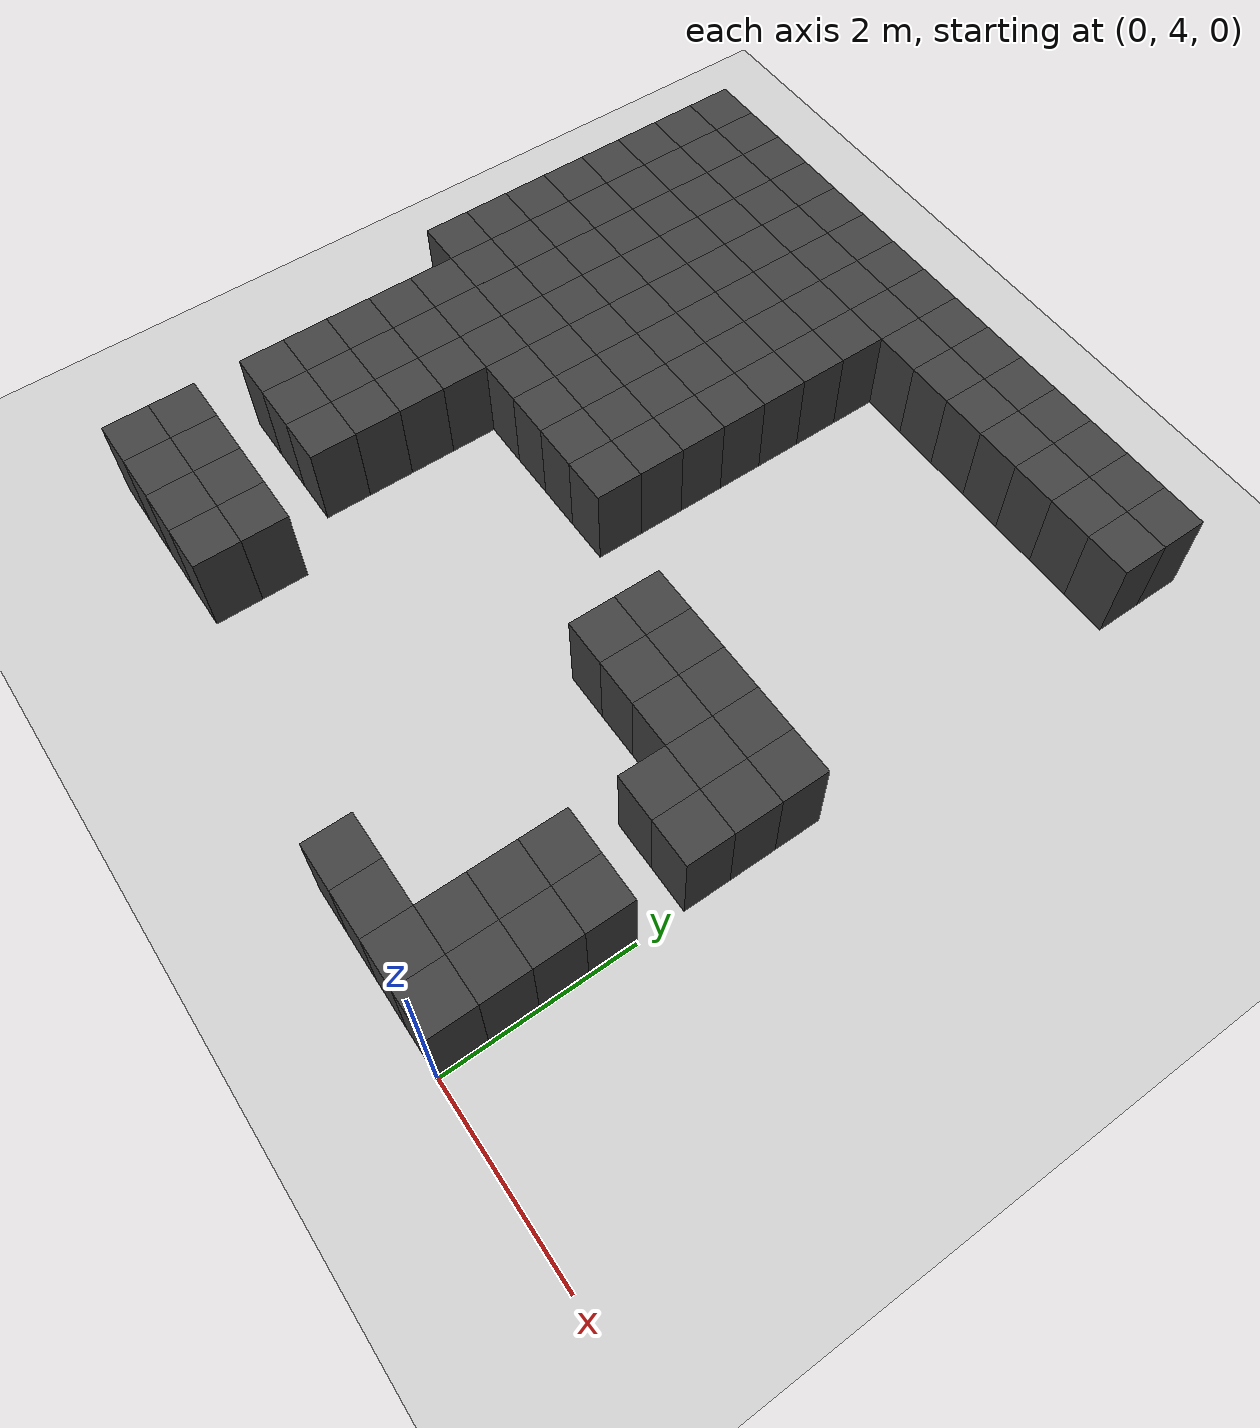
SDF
<sdf version="1.7">
 <world name="map_14056">
  <model name="ground_plane">
   <static>true</static>
   <link name="link">
    <collision name="collision">
     <geometry><plane><normal>0 0 1</normal><size>200 200</size></plane></geometry>
    </collision>
    <visual name="visual">
     <geometry><plane><normal>0 0 1</normal><size>200 200</size></plane></geometry>
     <material><ambient>0.8 0.8 0.8 1</ambient><diffuse>0.8 0.8 0.8 1</diffuse></material>
    </visual>
   </link>
  </model>
  <model name="maze_environment">
   <static>true</static>
   <link name="wall_10">
    <pose>-7.250 12.250 0.500 0 0 0</pose>
    <collision name="col"><geometry><box><size>0.5 0.5 1.0</size></box></geometry></collision>
    <visual name="vis">
     <geometry><box><size>0.5 0.5 1.0</size></box></geometry>
     <material><ambient>0.15 0.15 0.15 1</ambient><diffuse>0.25 0.25 0.25 1</diffuse></material>
    </visual>
   </link>
   <link name="wall_11">
    <pose>-6.750 12.250 0.500 0 0 0</pose>
    <collision name="col"><geometry><box><size>0.5 0.5 1.0</size></box></geometry></collision>
    <visual name="vis">
     <geometry><box><size>0.5 0.5 1.0</size></box></geometry>
     <material><ambient>0.15 0.15 0.15 1</ambient><diffuse>0.25 0.25 0.25 1</diffuse></material>
    </visual>
   </link>
   <link name="wall_12">
    <pose>-6.250 12.250 0.500 0 0 0</pose>
    <collision name="col"><geometry><box><size>0.5 0.5 1.0</size></box></geometry></collision>
    <visual name="vis">
     <geometry><box><size>0.5 0.5 1.0</size></box></geometry>
     <material><ambient>0.15 0.15 0.15 1</ambient><diffuse>0.25 0.25 0.25 1</diffuse></material>
    </visual>
   </link>
   <link name="wall_13">
    <pose>-5.750 12.250 0.500 0 0 0</pose>
    <collision name="col"><geometry><box><size>0.5 0.5 1.0</size></box></geometry></collision>
    <visual name="vis">
     <geometry><box><size>0.5 0.5 1.0</size></box></geometry>
     <material><ambient>0.15 0.15 0.15 1</ambient><diffuse>0.25 0.25 0.25 1</diffuse></material>
    </visual>
   </link>
   <link name="wall_14">
    <pose>-5.250 12.250 0.500 0 0 0</pose>
    <collision name="col"><geometry><box><size>0.5 0.5 1.0</size></box></geometry></collision>
    <visual name="vis">
     <geometry><box><size>0.5 0.5 1.0</size></box></geometry>
     <material><ambient>0.15 0.15 0.15 1</ambient><diffuse>0.25 0.25 0.25 1</diffuse></material>
    </visual>
   </link>
   <link name="wall_15">
    <pose>-4.750 12.250 0.500 0 0 0</pose>
    <collision name="col"><geometry><box><size>0.5 0.5 1.0</size></box></geometry></collision>
    <visual name="vis">
     <geometry><box><size>0.5 0.5 1.0</size></box></geometry>
     <material><ambient>0.15 0.15 0.15 1</ambient><diffuse>0.25 0.25 0.25 1</diffuse></material>
    </visual>
   </link>
   <link name="wall_16">
    <pose>-4.250 12.250 0.500 0 0 0</pose>
    <collision name="col"><geometry><box><size>0.5 0.5 1.0</size></box></geometry></collision>
    <visual name="vis">
     <geometry><box><size>0.5 0.5 1.0</size></box></geometry>
     <material><ambient>0.15 0.15 0.15 1</ambient><diffuse>0.25 0.25 0.25 1</diffuse></material>
    </visual>
   </link>
   <link name="wall_17">
    <pose>-3.750 12.250 0.500 0 0 0</pose>
    <collision name="col"><geometry><box><size>0.5 0.5 1.0</size></box></geometry></collision>
    <visual name="vis">
     <geometry><box><size>0.5 0.5 1.0</size></box></geometry>
     <material><ambient>0.15 0.15 0.15 1</ambient><diffuse>0.25 0.25 0.25 1</diffuse></material>
    </visual>
   </link>
   <link name="wall_18">
    <pose>-3.250 12.250 0.500 0 0 0</pose>
    <collision name="col"><geometry><box><size>0.5 0.5 1.0</size></box></geometry></collision>
    <visual name="vis">
     <geometry><box><size>0.5 0.5 1.0</size></box></geometry>
     <material><ambient>0.15 0.15 0.15 1</ambient><diffuse>0.25 0.25 0.25 1</diffuse></material>
    </visual>
   </link>
   <link name="wall_19">
    <pose>-2.750 12.250 0.500 0 0 0</pose>
    <collision name="col"><geometry><box><size>0.5 0.5 1.0</size></box></geometry></collision>
    <visual name="vis">
     <geometry><box><size>0.5 0.5 1.0</size></box></geometry>
     <material><ambient>0.15 0.15 0.15 1</ambient><diffuse>0.25 0.25 0.25 1</diffuse></material>
    </visual>
   </link>
   <link name="wall_20">
    <pose>-2.250 12.250 0.500 0 0 0</pose>
    <collision name="col"><geometry><box><size>0.5 0.5 1.0</size></box></geometry></collision>
    <visual name="vis">
     <geometry><box><size>0.5 0.5 1.0</size></box></geometry>
     <material><ambient>0.15 0.15 0.15 1</ambient><diffuse>0.25 0.25 0.25 1</diffuse></material>
    </visual>
   </link>
   <link name="wall_21">
    <pose>-1.750 12.250 0.500 0 0 0</pose>
    <collision name="col"><geometry><box><size>0.5 0.5 1.0</size></box></geometry></collision>
    <visual name="vis">
     <geometry><box><size>0.5 0.5 1.0</size></box></geometry>
     <material><ambient>0.15 0.15 0.15 1</ambient><diffuse>0.25 0.25 0.25 1</diffuse></material>
    </visual>
   </link>
   <link name="wall_22">
    <pose>-1.250 12.250 0.500 0 0 0</pose>
    <collision name="col"><geometry><box><size>0.5 0.5 1.0</size></box></geometry></collision>
    <visual name="vis">
     <geometry><box><size>0.5 0.5 1.0</size></box></geometry>
     <material><ambient>0.15 0.15 0.15 1</ambient><diffuse>0.25 0.25 0.25 1</diffuse></material>
    </visual>
   </link>
   <link name="wall_23">
    <pose>-0.750 12.250 0.500 0 0 0</pose>
    <collision name="col"><geometry><box><size>0.5 0.5 1.0</size></box></geometry></collision>
    <visual name="vis">
     <geometry><box><size>0.5 0.5 1.0</size></box></geometry>
     <material><ambient>0.15 0.15 0.15 1</ambient><diffuse>0.25 0.25 0.25 1</diffuse></material>
    </visual>
   </link>
   <link name="wall_24">
    <pose>-0.250 12.250 0.500 0 0 0</pose>
    <collision name="col"><geometry><box><size>0.5 0.5 1.0</size></box></geometry></collision>
    <visual name="vis">
     <geometry><box><size>0.5 0.5 1.0</size></box></geometry>
     <material><ambient>0.15 0.15 0.15 1</ambient><diffuse>0.25 0.25 0.25 1</diffuse></material>
    </visual>
   </link>
   <link name="wall_57">
    <pose>-7.250 11.750 0.500 0 0 0</pose>
    <collision name="col"><geometry><box><size>0.5 0.5 1.0</size></box></geometry></collision>
    <visual name="vis">
     <geometry><box><size>0.5 0.5 1.0</size></box></geometry>
     <material><ambient>0.15 0.15 0.15 1</ambient><diffuse>0.25 0.25 0.25 1</diffuse></material>
    </visual>
   </link>
   <link name="wall_58">
    <pose>-6.750 11.750 0.500 0 0 0</pose>
    <collision name="col"><geometry><box><size>0.5 0.5 1.0</size></box></geometry></collision>
    <visual name="vis">
     <geometry><box><size>0.5 0.5 1.0</size></box></geometry>
     <material><ambient>0.15 0.15 0.15 1</ambient><diffuse>0.25 0.25 0.25 1</diffuse></material>
    </visual>
   </link>
   <link name="wall_59">
    <pose>-6.250 11.750 0.500 0 0 0</pose>
    <collision name="col"><geometry><box><size>0.5 0.5 1.0</size></box></geometry></collision>
    <visual name="vis">
     <geometry><box><size>0.5 0.5 1.0</size></box></geometry>
     <material><ambient>0.15 0.15 0.15 1</ambient><diffuse>0.25 0.25 0.25 1</diffuse></material>
    </visual>
   </link>
   <link name="wall_60">
    <pose>-5.750 11.750 0.500 0 0 0</pose>
    <collision name="col"><geometry><box><size>0.5 0.5 1.0</size></box></geometry></collision>
    <visual name="vis">
     <geometry><box><size>0.5 0.5 1.0</size></box></geometry>
     <material><ambient>0.15 0.15 0.15 1</ambient><diffuse>0.25 0.25 0.25 1</diffuse></material>
    </visual>
   </link>
   <link name="wall_61">
    <pose>-5.250 11.750 0.500 0 0 0</pose>
    <collision name="col"><geometry><box><size>0.5 0.5 1.0</size></box></geometry></collision>
    <visual name="vis">
     <geometry><box><size>0.5 0.5 1.0</size></box></geometry>
     <material><ambient>0.15 0.15 0.15 1</ambient><diffuse>0.25 0.25 0.25 1</diffuse></material>
    </visual>
   </link>
   <link name="wall_62">
    <pose>-4.750 11.750 0.500 0 0 0</pose>
    <collision name="col"><geometry><box><size>0.5 0.5 1.0</size></box></geometry></collision>
    <visual name="vis">
     <geometry><box><size>0.5 0.5 1.0</size></box></geometry>
     <material><ambient>0.15 0.15 0.15 1</ambient><diffuse>0.25 0.25 0.25 1</diffuse></material>
    </visual>
   </link>
   <link name="wall_63">
    <pose>-4.250 11.750 0.500 0 0 0</pose>
    <collision name="col"><geometry><box><size>0.5 0.5 1.0</size></box></geometry></collision>
    <visual name="vis">
     <geometry><box><size>0.5 0.5 1.0</size></box></geometry>
     <material><ambient>0.15 0.15 0.15 1</ambient><diffuse>0.25 0.25 0.25 1</diffuse></material>
    </visual>
   </link>
   <link name="wall_64">
    <pose>-3.750 11.750 0.500 0 0 0</pose>
    <collision name="col"><geometry><box><size>0.5 0.5 1.0</size></box></geometry></collision>
    <visual name="vis">
     <geometry><box><size>0.5 0.5 1.0</size></box></geometry>
     <material><ambient>0.15 0.15 0.15 1</ambient><diffuse>0.25 0.25 0.25 1</diffuse></material>
    </visual>
   </link>
   <link name="wall_65">
    <pose>-3.250 11.750 0.500 0 0 0</pose>
    <collision name="col"><geometry><box><size>0.5 0.5 1.0</size></box></geometry></collision>
    <visual name="vis">
     <geometry><box><size>0.5 0.5 1.0</size></box></geometry>
     <material><ambient>0.15 0.15 0.15 1</ambient><diffuse>0.25 0.25 0.25 1</diffuse></material>
    </visual>
   </link>
   <link name="wall_66">
    <pose>-2.750 11.750 0.500 0 0 0</pose>
    <collision name="col"><geometry><box><size>0.5 0.5 1.0</size></box></geometry></collision>
    <visual name="vis">
     <geometry><box><size>0.5 0.5 1.0</size></box></geometry>
     <material><ambient>0.15 0.15 0.15 1</ambient><diffuse>0.25 0.25 0.25 1</diffuse></material>
    </visual>
   </link>
   <link name="wall_67">
    <pose>-2.250 11.750 0.500 0 0 0</pose>
    <collision name="col"><geometry><box><size>0.5 0.5 1.0</size></box></geometry></collision>
    <visual name="vis">
     <geometry><box><size>0.5 0.5 1.0</size></box></geometry>
     <material><ambient>0.15 0.15 0.15 1</ambient><diffuse>0.25 0.25 0.25 1</diffuse></material>
    </visual>
   </link>
   <link name="wall_68">
    <pose>-1.750 11.750 0.500 0 0 0</pose>
    <collision name="col"><geometry><box><size>0.5 0.5 1.0</size></box></geometry></collision>
    <visual name="vis">
     <geometry><box><size>0.5 0.5 1.0</size></box></geometry>
     <material><ambient>0.15 0.15 0.15 1</ambient><diffuse>0.25 0.25 0.25 1</diffuse></material>
    </visual>
   </link>
   <link name="wall_69">
    <pose>-1.250 11.750 0.500 0 0 0</pose>
    <collision name="col"><geometry><box><size>0.5 0.5 1.0</size></box></geometry></collision>
    <visual name="vis">
     <geometry><box><size>0.5 0.5 1.0</size></box></geometry>
     <material><ambient>0.15 0.15 0.15 1</ambient><diffuse>0.25 0.25 0.25 1</diffuse></material>
    </visual>
   </link>
   <link name="wall_70">
    <pose>-0.750 11.750 0.500 0 0 0</pose>
    <collision name="col"><geometry><box><size>0.5 0.5 1.0</size></box></geometry></collision>
    <visual name="vis">
     <geometry><box><size>0.5 0.5 1.0</size></box></geometry>
     <material><ambient>0.15 0.15 0.15 1</ambient><diffuse>0.25 0.25 0.25 1</diffuse></material>
    </visual>
   </link>
   <link name="wall_71">
    <pose>-0.250 11.750 0.500 0 0 0</pose>
    <collision name="col"><geometry><box><size>0.5 0.5 1.0</size></box></geometry></collision>
    <visual name="vis">
     <geometry><box><size>0.5 0.5 1.0</size></box></geometry>
     <material><ambient>0.15 0.15 0.15 1</ambient><diffuse>0.25 0.25 0.25 1</diffuse></material>
    </visual>
   </link>
   <link name="wall_104">
    <pose>-7.250 11.250 0.500 0 0 0</pose>
    <collision name="col"><geometry><box><size>0.5 0.5 1.0</size></box></geometry></collision>
    <visual name="vis">
     <geometry><box><size>0.5 0.5 1.0</size></box></geometry>
     <material><ambient>0.15 0.15 0.15 1</ambient><diffuse>0.25 0.25 0.25 1</diffuse></material>
    </visual>
   </link>
   <link name="wall_105">
    <pose>-6.750 11.250 0.500 0 0 0</pose>
    <collision name="col"><geometry><box><size>0.5 0.5 1.0</size></box></geometry></collision>
    <visual name="vis">
     <geometry><box><size>0.5 0.5 1.0</size></box></geometry>
     <material><ambient>0.15 0.15 0.15 1</ambient><diffuse>0.25 0.25 0.25 1</diffuse></material>
    </visual>
   </link>
   <link name="wall_106">
    <pose>-6.250 11.250 0.500 0 0 0</pose>
    <collision name="col"><geometry><box><size>0.5 0.5 1.0</size></box></geometry></collision>
    <visual name="vis">
     <geometry><box><size>0.5 0.5 1.0</size></box></geometry>
     <material><ambient>0.15 0.15 0.15 1</ambient><diffuse>0.25 0.25 0.25 1</diffuse></material>
    </visual>
   </link>
   <link name="wall_107">
    <pose>-5.750 11.250 0.500 0 0 0</pose>
    <collision name="col"><geometry><box><size>0.5 0.5 1.0</size></box></geometry></collision>
    <visual name="vis">
     <geometry><box><size>0.5 0.5 1.0</size></box></geometry>
     <material><ambient>0.15 0.15 0.15 1</ambient><diffuse>0.25 0.25 0.25 1</diffuse></material>
    </visual>
   </link>
   <link name="wall_108">
    <pose>-5.250 11.250 0.500 0 0 0</pose>
    <collision name="col"><geometry><box><size>0.5 0.5 1.0</size></box></geometry></collision>
    <visual name="vis">
     <geometry><box><size>0.5 0.5 1.0</size></box></geometry>
     <material><ambient>0.15 0.15 0.15 1</ambient><diffuse>0.25 0.25 0.25 1</diffuse></material>
    </visual>
   </link>
   <link name="wall_109">
    <pose>-4.750 11.250 0.500 0 0 0</pose>
    <collision name="col"><geometry><box><size>0.5 0.5 1.0</size></box></geometry></collision>
    <visual name="vis">
     <geometry><box><size>0.5 0.5 1.0</size></box></geometry>
     <material><ambient>0.15 0.15 0.15 1</ambient><diffuse>0.25 0.25 0.25 1</diffuse></material>
    </visual>
   </link>
   <link name="wall_110">
    <pose>-4.250 11.250 0.500 0 0 0</pose>
    <collision name="col"><geometry><box><size>0.5 0.5 1.0</size></box></geometry></collision>
    <visual name="vis">
     <geometry><box><size>0.5 0.5 1.0</size></box></geometry>
     <material><ambient>0.15 0.15 0.15 1</ambient><diffuse>0.25 0.25 0.25 1</diffuse></material>
    </visual>
   </link>
   <link name="wall_111">
    <pose>-3.750 11.250 0.500 0 0 0</pose>
    <collision name="col"><geometry><box><size>0.5 0.5 1.0</size></box></geometry></collision>
    <visual name="vis">
     <geometry><box><size>0.5 0.5 1.0</size></box></geometry>
     <material><ambient>0.15 0.15 0.15 1</ambient><diffuse>0.25 0.25 0.25 1</diffuse></material>
    </visual>
   </link>
   <link name="wall_143">
    <pose>-7.250 10.750 0.500 0 0 0</pose>
    <collision name="col"><geometry><box><size>0.5 0.5 1.0</size></box></geometry></collision>
    <visual name="vis">
     <geometry><box><size>0.5 0.5 1.0</size></box></geometry>
     <material><ambient>0.15 0.15 0.15 1</ambient><diffuse>0.25 0.25 0.25 1</diffuse></material>
    </visual>
   </link>
   <link name="wall_144">
    <pose>-6.750 10.750 0.500 0 0 0</pose>
    <collision name="col"><geometry><box><size>0.5 0.5 1.0</size></box></geometry></collision>
    <visual name="vis">
     <geometry><box><size>0.5 0.5 1.0</size></box></geometry>
     <material><ambient>0.15 0.15 0.15 1</ambient><diffuse>0.25 0.25 0.25 1</diffuse></material>
    </visual>
   </link>
   <link name="wall_145">
    <pose>-6.250 10.750 0.500 0 0 0</pose>
    <collision name="col"><geometry><box><size>0.5 0.5 1.0</size></box></geometry></collision>
    <visual name="vis">
     <geometry><box><size>0.5 0.5 1.0</size></box></geometry>
     <material><ambient>0.15 0.15 0.15 1</ambient><diffuse>0.25 0.25 0.25 1</diffuse></material>
    </visual>
   </link>
   <link name="wall_146">
    <pose>-5.750 10.750 0.500 0 0 0</pose>
    <collision name="col"><geometry><box><size>0.5 0.5 1.0</size></box></geometry></collision>
    <visual name="vis">
     <geometry><box><size>0.5 0.5 1.0</size></box></geometry>
     <material><ambient>0.15 0.15 0.15 1</ambient><diffuse>0.25 0.25 0.25 1</diffuse></material>
    </visual>
   </link>
   <link name="wall_147">
    <pose>-5.250 10.750 0.500 0 0 0</pose>
    <collision name="col"><geometry><box><size>0.5 0.5 1.0</size></box></geometry></collision>
    <visual name="vis">
     <geometry><box><size>0.5 0.5 1.0</size></box></geometry>
     <material><ambient>0.15 0.15 0.15 1</ambient><diffuse>0.25 0.25 0.25 1</diffuse></material>
    </visual>
   </link>
   <link name="wall_148">
    <pose>-4.750 10.750 0.500 0 0 0</pose>
    <collision name="col"><geometry><box><size>0.5 0.5 1.0</size></box></geometry></collision>
    <visual name="vis">
     <geometry><box><size>0.5 0.5 1.0</size></box></geometry>
     <material><ambient>0.15 0.15 0.15 1</ambient><diffuse>0.25 0.25 0.25 1</diffuse></material>
    </visual>
   </link>
   <link name="wall_149">
    <pose>-4.250 10.750 0.500 0 0 0</pose>
    <collision name="col"><geometry><box><size>0.5 0.5 1.0</size></box></geometry></collision>
    <visual name="vis">
     <geometry><box><size>0.5 0.5 1.0</size></box></geometry>
     <material><ambient>0.15 0.15 0.15 1</ambient><diffuse>0.25 0.25 0.25 1</diffuse></material>
    </visual>
   </link>
   <link name="wall_150">
    <pose>-3.750 10.750 0.500 0 0 0</pose>
    <collision name="col"><geometry><box><size>0.5 0.5 1.0</size></box></geometry></collision>
    <visual name="vis">
     <geometry><box><size>0.5 0.5 1.0</size></box></geometry>
     <material><ambient>0.15 0.15 0.15 1</ambient><diffuse>0.25 0.25 0.25 1</diffuse></material>
    </visual>
   </link>
   <link name="wall_184">
    <pose>-7.250 10.250 0.500 0 0 0</pose>
    <collision name="col"><geometry><box><size>0.5 0.5 1.0</size></box></geometry></collision>
    <visual name="vis">
     <geometry><box><size>0.5 0.5 1.0</size></box></geometry>
     <material><ambient>0.15 0.15 0.15 1</ambient><diffuse>0.25 0.25 0.25 1</diffuse></material>
    </visual>
   </link>
   <link name="wall_185">
    <pose>-6.750 10.250 0.500 0 0 0</pose>
    <collision name="col"><geometry><box><size>0.5 0.5 1.0</size></box></geometry></collision>
    <visual name="vis">
     <geometry><box><size>0.5 0.5 1.0</size></box></geometry>
     <material><ambient>0.15 0.15 0.15 1</ambient><diffuse>0.25 0.25 0.25 1</diffuse></material>
    </visual>
   </link>
   <link name="wall_186">
    <pose>-6.250 10.250 0.500 0 0 0</pose>
    <collision name="col"><geometry><box><size>0.5 0.5 1.0</size></box></geometry></collision>
    <visual name="vis">
     <geometry><box><size>0.5 0.5 1.0</size></box></geometry>
     <material><ambient>0.15 0.15 0.15 1</ambient><diffuse>0.25 0.25 0.25 1</diffuse></material>
    </visual>
   </link>
   <link name="wall_187">
    <pose>-5.750 10.250 0.500 0 0 0</pose>
    <collision name="col"><geometry><box><size>0.5 0.5 1.0</size></box></geometry></collision>
    <visual name="vis">
     <geometry><box><size>0.5 0.5 1.0</size></box></geometry>
     <material><ambient>0.15 0.15 0.15 1</ambient><diffuse>0.25 0.25 0.25 1</diffuse></material>
    </visual>
   </link>
   <link name="wall_188">
    <pose>-5.250 10.250 0.500 0 0 0</pose>
    <collision name="col"><geometry><box><size>0.5 0.5 1.0</size></box></geometry></collision>
    <visual name="vis">
     <geometry><box><size>0.5 0.5 1.0</size></box></geometry>
     <material><ambient>0.15 0.15 0.15 1</ambient><diffuse>0.25 0.25 0.25 1</diffuse></material>
    </visual>
   </link>
   <link name="wall_189">
    <pose>-4.750 10.250 0.500 0 0 0</pose>
    <collision name="col"><geometry><box><size>0.5 0.5 1.0</size></box></geometry></collision>
    <visual name="vis">
     <geometry><box><size>0.5 0.5 1.0</size></box></geometry>
     <material><ambient>0.15 0.15 0.15 1</ambient><diffuse>0.25 0.25 0.25 1</diffuse></material>
    </visual>
   </link>
   <link name="wall_190">
    <pose>-4.250 10.250 0.500 0 0 0</pose>
    <collision name="col"><geometry><box><size>0.5 0.5 1.0</size></box></geometry></collision>
    <visual name="vis">
     <geometry><box><size>0.5 0.5 1.0</size></box></geometry>
     <material><ambient>0.15 0.15 0.15 1</ambient><diffuse>0.25 0.25 0.25 1</diffuse></material>
    </visual>
   </link>
   <link name="wall_191">
    <pose>-3.750 10.250 0.500 0 0 0</pose>
    <collision name="col"><geometry><box><size>0.5 0.5 1.0</size></box></geometry></collision>
    <visual name="vis">
     <geometry><box><size>0.5 0.5 1.0</size></box></geometry>
     <material><ambient>0.15 0.15 0.15 1</ambient><diffuse>0.25 0.25 0.25 1</diffuse></material>
    </visual>
   </link>
   <link name="wall_225">
    <pose>-7.250 9.750 0.500 0 0 0</pose>
    <collision name="col"><geometry><box><size>0.5 0.5 1.0</size></box></geometry></collision>
    <visual name="vis">
     <geometry><box><size>0.5 0.5 1.0</size></box></geometry>
     <material><ambient>0.15 0.15 0.15 1</ambient><diffuse>0.25 0.25 0.25 1</diffuse></material>
    </visual>
   </link>
   <link name="wall_226">
    <pose>-6.750 9.750 0.500 0 0 0</pose>
    <collision name="col"><geometry><box><size>0.5 0.5 1.0</size></box></geometry></collision>
    <visual name="vis">
     <geometry><box><size>0.5 0.5 1.0</size></box></geometry>
     <material><ambient>0.15 0.15 0.15 1</ambient><diffuse>0.25 0.25 0.25 1</diffuse></material>
    </visual>
   </link>
   <link name="wall_227">
    <pose>-6.250 9.750 0.500 0 0 0</pose>
    <collision name="col"><geometry><box><size>0.5 0.5 1.0</size></box></geometry></collision>
    <visual name="vis">
     <geometry><box><size>0.5 0.5 1.0</size></box></geometry>
     <material><ambient>0.15 0.15 0.15 1</ambient><diffuse>0.25 0.25 0.25 1</diffuse></material>
    </visual>
   </link>
   <link name="wall_228">
    <pose>-5.750 9.750 0.500 0 0 0</pose>
    <collision name="col"><geometry><box><size>0.5 0.5 1.0</size></box></geometry></collision>
    <visual name="vis">
     <geometry><box><size>0.5 0.5 1.0</size></box></geometry>
     <material><ambient>0.15 0.15 0.15 1</ambient><diffuse>0.25 0.25 0.25 1</diffuse></material>
    </visual>
   </link>
   <link name="wall_229">
    <pose>-5.250 9.750 0.500 0 0 0</pose>
    <collision name="col"><geometry><box><size>0.5 0.5 1.0</size></box></geometry></collision>
    <visual name="vis">
     <geometry><box><size>0.5 0.5 1.0</size></box></geometry>
     <material><ambient>0.15 0.15 0.15 1</ambient><diffuse>0.25 0.25 0.25 1</diffuse></material>
    </visual>
   </link>
   <link name="wall_230">
    <pose>-4.750 9.750 0.500 0 0 0</pose>
    <collision name="col"><geometry><box><size>0.5 0.5 1.0</size></box></geometry></collision>
    <visual name="vis">
     <geometry><box><size>0.5 0.5 1.0</size></box></geometry>
     <material><ambient>0.15 0.15 0.15 1</ambient><diffuse>0.25 0.25 0.25 1</diffuse></material>
    </visual>
   </link>
   <link name="wall_231">
    <pose>-4.250 9.750 0.500 0 0 0</pose>
    <collision name="col"><geometry><box><size>0.5 0.5 1.0</size></box></geometry></collision>
    <visual name="vis">
     <geometry><box><size>0.5 0.5 1.0</size></box></geometry>
     <material><ambient>0.15 0.15 0.15 1</ambient><diffuse>0.25 0.25 0.25 1</diffuse></material>
    </visual>
   </link>
   <link name="wall_232">
    <pose>-3.750 9.750 0.500 0 0 0</pose>
    <collision name="col"><geometry><box><size>0.5 0.5 1.0</size></box></geometry></collision>
    <visual name="vis">
     <geometry><box><size>0.5 0.5 1.0</size></box></geometry>
     <material><ambient>0.15 0.15 0.15 1</ambient><diffuse>0.25 0.25 0.25 1</diffuse></material>
    </visual>
   </link>
   <link name="wall_266">
    <pose>-7.250 9.250 0.500 0 0 0</pose>
    <collision name="col"><geometry><box><size>0.5 0.5 1.0</size></box></geometry></collision>
    <visual name="vis">
     <geometry><box><size>0.5 0.5 1.0</size></box></geometry>
     <material><ambient>0.15 0.15 0.15 1</ambient><diffuse>0.25 0.25 0.25 1</diffuse></material>
    </visual>
   </link>
   <link name="wall_267">
    <pose>-6.750 9.250 0.500 0 0 0</pose>
    <collision name="col"><geometry><box><size>0.5 0.5 1.0</size></box></geometry></collision>
    <visual name="vis">
     <geometry><box><size>0.5 0.5 1.0</size></box></geometry>
     <material><ambient>0.15 0.15 0.15 1</ambient><diffuse>0.25 0.25 0.25 1</diffuse></material>
    </visual>
   </link>
   <link name="wall_268">
    <pose>-6.250 9.250 0.500 0 0 0</pose>
    <collision name="col"><geometry><box><size>0.5 0.5 1.0</size></box></geometry></collision>
    <visual name="vis">
     <geometry><box><size>0.5 0.5 1.0</size></box></geometry>
     <material><ambient>0.15 0.15 0.15 1</ambient><diffuse>0.25 0.25 0.25 1</diffuse></material>
    </visual>
   </link>
   <link name="wall_269">
    <pose>-5.750 9.250 0.500 0 0 0</pose>
    <collision name="col"><geometry><box><size>0.5 0.5 1.0</size></box></geometry></collision>
    <visual name="vis">
     <geometry><box><size>0.5 0.5 1.0</size></box></geometry>
     <material><ambient>0.15 0.15 0.15 1</ambient><diffuse>0.25 0.25 0.25 1</diffuse></material>
    </visual>
   </link>
   <link name="wall_270">
    <pose>-5.250 9.250 0.500 0 0 0</pose>
    <collision name="col"><geometry><box><size>0.5 0.5 1.0</size></box></geometry></collision>
    <visual name="vis">
     <geometry><box><size>0.5 0.5 1.0</size></box></geometry>
     <material><ambient>0.15 0.15 0.15 1</ambient><diffuse>0.25 0.25 0.25 1</diffuse></material>
    </visual>
   </link>
   <link name="wall_271">
    <pose>-4.750 9.250 0.500 0 0 0</pose>
    <collision name="col"><geometry><box><size>0.5 0.5 1.0</size></box></geometry></collision>
    <visual name="vis">
     <geometry><box><size>0.5 0.5 1.0</size></box></geometry>
     <material><ambient>0.15 0.15 0.15 1</ambient><diffuse>0.25 0.25 0.25 1</diffuse></material>
    </visual>
   </link>
   <link name="wall_272">
    <pose>-4.250 9.250 0.500 0 0 0</pose>
    <collision name="col"><geometry><box><size>0.5 0.5 1.0</size></box></geometry></collision>
    <visual name="vis">
     <geometry><box><size>0.5 0.5 1.0</size></box></geometry>
     <material><ambient>0.15 0.15 0.15 1</ambient><diffuse>0.25 0.25 0.25 1</diffuse></material>
    </visual>
   </link>
   <link name="wall_273">
    <pose>-3.750 9.250 0.500 0 0 0</pose>
    <collision name="col"><geometry><box><size>0.5 0.5 1.0</size></box></geometry></collision>
    <visual name="vis">
     <geometry><box><size>0.5 0.5 1.0</size></box></geometry>
     <material><ambient>0.15 0.15 0.15 1</ambient><diffuse>0.25 0.25 0.25 1</diffuse></material>
    </visual>
   </link>
   <link name="wall_299">
    <pose>-7.250 8.750 0.500 0 0 0</pose>
    <collision name="col"><geometry><box><size>0.5 0.5 1.0</size></box></geometry></collision>
    <visual name="vis">
     <geometry><box><size>0.5 0.5 1.0</size></box></geometry>
     <material><ambient>0.15 0.15 0.15 1</ambient><diffuse>0.25 0.25 0.25 1</diffuse></material>
    </visual>
   </link>
   <link name="wall_300">
    <pose>-6.750 8.750 0.500 0 0 0</pose>
    <collision name="col"><geometry><box><size>0.5 0.5 1.0</size></box></geometry></collision>
    <visual name="vis">
     <geometry><box><size>0.5 0.5 1.0</size></box></geometry>
     <material><ambient>0.15 0.15 0.15 1</ambient><diffuse>0.25 0.25 0.25 1</diffuse></material>
    </visual>
   </link>
   <link name="wall_301">
    <pose>-6.250 8.750 0.500 0 0 0</pose>
    <collision name="col"><geometry><box><size>0.5 0.5 1.0</size></box></geometry></collision>
    <visual name="vis">
     <geometry><box><size>0.5 0.5 1.0</size></box></geometry>
     <material><ambient>0.15 0.15 0.15 1</ambient><diffuse>0.25 0.25 0.25 1</diffuse></material>
    </visual>
   </link>
   <link name="wall_302">
    <pose>-5.750 8.750 0.500 0 0 0</pose>
    <collision name="col"><geometry><box><size>0.5 0.5 1.0</size></box></geometry></collision>
    <visual name="vis">
     <geometry><box><size>0.5 0.5 1.0</size></box></geometry>
     <material><ambient>0.15 0.15 0.15 1</ambient><diffuse>0.25 0.25 0.25 1</diffuse></material>
    </visual>
   </link>
   <link name="wall_303">
    <pose>-5.250 8.750 0.500 0 0 0</pose>
    <collision name="col"><geometry><box><size>0.5 0.5 1.0</size></box></geometry></collision>
    <visual name="vis">
     <geometry><box><size>0.5 0.5 1.0</size></box></geometry>
     <material><ambient>0.15 0.15 0.15 1</ambient><diffuse>0.25 0.25 0.25 1</diffuse></material>
    </visual>
   </link>
   <link name="wall_304">
    <pose>-4.750 8.750 0.500 0 0 0</pose>
    <collision name="col"><geometry><box><size>0.5 0.5 1.0</size></box></geometry></collision>
    <visual name="vis">
     <geometry><box><size>0.5 0.5 1.0</size></box></geometry>
     <material><ambient>0.15 0.15 0.15 1</ambient><diffuse>0.25 0.25 0.25 1</diffuse></material>
    </visual>
   </link>
   <link name="wall_305">
    <pose>-4.250 8.750 0.500 0 0 0</pose>
    <collision name="col"><geometry><box><size>0.5 0.5 1.0</size></box></geometry></collision>
    <visual name="vis">
     <geometry><box><size>0.5 0.5 1.0</size></box></geometry>
     <material><ambient>0.15 0.15 0.15 1</ambient><diffuse>0.25 0.25 0.25 1</diffuse></material>
    </visual>
   </link>
   <link name="wall_306">
    <pose>-3.750 8.750 0.500 0 0 0</pose>
    <collision name="col"><geometry><box><size>0.5 0.5 1.0</size></box></geometry></collision>
    <visual name="vis">
     <geometry><box><size>0.5 0.5 1.0</size></box></geometry>
     <material><ambient>0.15 0.15 0.15 1</ambient><diffuse>0.25 0.25 0.25 1</diffuse></material>
    </visual>
   </link>
   <link name="wall_328">
    <pose>-6.750 8.250 0.500 0 0 0</pose>
    <collision name="col"><geometry><box><size>0.5 0.5 1.0</size></box></geometry></collision>
    <visual name="vis">
     <geometry><box><size>0.5 0.5 1.0</size></box></geometry>
     <material><ambient>0.15 0.15 0.15 1</ambient><diffuse>0.25 0.25 0.25 1</diffuse></material>
    </visual>
   </link>
   <link name="wall_329">
    <pose>-6.250 8.250 0.500 0 0 0</pose>
    <collision name="col"><geometry><box><size>0.5 0.5 1.0</size></box></geometry></collision>
    <visual name="vis">
     <geometry><box><size>0.5 0.5 1.0</size></box></geometry>
     <material><ambient>0.15 0.15 0.15 1</ambient><diffuse>0.25 0.25 0.25 1</diffuse></material>
    </visual>
   </link>
   <link name="wall_330">
    <pose>-5.750 8.250 0.500 0 0 0</pose>
    <collision name="col"><geometry><box><size>0.5 0.5 1.0</size></box></geometry></collision>
    <visual name="vis">
     <geometry><box><size>0.5 0.5 1.0</size></box></geometry>
     <material><ambient>0.15 0.15 0.15 1</ambient><diffuse>0.25 0.25 0.25 1</diffuse></material>
    </visual>
   </link>
   <link name="wall_331">
    <pose>-5.250 8.250 0.500 0 0 0</pose>
    <collision name="col"><geometry><box><size>0.5 0.5 1.0</size></box></geometry></collision>
    <visual name="vis">
     <geometry><box><size>0.5 0.5 1.0</size></box></geometry>
     <material><ambient>0.15 0.15 0.15 1</ambient><diffuse>0.25 0.25 0.25 1</diffuse></material>
    </visual>
   </link>
   <link name="wall_332">
    <pose>-4.750 8.250 0.500 0 0 0</pose>
    <collision name="col"><geometry><box><size>0.5 0.5 1.0</size></box></geometry></collision>
    <visual name="vis">
     <geometry><box><size>0.5 0.5 1.0</size></box></geometry>
     <material><ambient>0.15 0.15 0.15 1</ambient><diffuse>0.25 0.25 0.25 1</diffuse></material>
    </visual>
   </link>
   <link name="wall_333">
    <pose>-4.250 8.250 0.500 0 0 0</pose>
    <collision name="col"><geometry><box><size>0.5 0.5 1.0</size></box></geometry></collision>
    <visual name="vis">
     <geometry><box><size>0.5 0.5 1.0</size></box></geometry>
     <material><ambient>0.15 0.15 0.15 1</ambient><diffuse>0.25 0.25 0.25 1</diffuse></material>
    </visual>
   </link>
   <link name="wall_334">
    <pose>-3.750 8.250 0.500 0 0 0</pose>
    <collision name="col"><geometry><box><size>0.5 0.5 1.0</size></box></geometry></collision>
    <visual name="vis">
     <geometry><box><size>0.5 0.5 1.0</size></box></geometry>
     <material><ambient>0.15 0.15 0.15 1</ambient><diffuse>0.25 0.25 0.25 1</diffuse></material>
    </visual>
   </link>
   <link name="wall_355">
    <pose>-6.750 7.750 0.500 0 0 0</pose>
    <collision name="col"><geometry><box><size>0.5 0.5 1.0</size></box></geometry></collision>
    <visual name="vis">
     <geometry><box><size>0.5 0.5 1.0</size></box></geometry>
     <material><ambient>0.15 0.15 0.15 1</ambient><diffuse>0.25 0.25 0.25 1</diffuse></material>
    </visual>
   </link>
   <link name="wall_356">
    <pose>-6.250 7.750 0.500 0 0 0</pose>
    <collision name="col"><geometry><box><size>0.5 0.5 1.0</size></box></geometry></collision>
    <visual name="vis">
     <geometry><box><size>0.5 0.5 1.0</size></box></geometry>
     <material><ambient>0.15 0.15 0.15 1</ambient><diffuse>0.25 0.25 0.25 1</diffuse></material>
    </visual>
   </link>
   <link name="wall_357">
    <pose>-5.750 7.750 0.500 0 0 0</pose>
    <collision name="col"><geometry><box><size>0.5 0.5 1.0</size></box></geometry></collision>
    <visual name="vis">
     <geometry><box><size>0.5 0.5 1.0</size></box></geometry>
     <material><ambient>0.15 0.15 0.15 1</ambient><diffuse>0.25 0.25 0.25 1</diffuse></material>
    </visual>
   </link>
   <link name="wall_358">
    <pose>-2.250 7.750 0.500 0 0 0</pose>
    <collision name="col"><geometry><box><size>0.5 0.5 1.0</size></box></geometry></collision>
    <visual name="vis">
     <geometry><box><size>0.5 0.5 1.0</size></box></geometry>
     <material><ambient>0.15 0.15 0.15 1</ambient><diffuse>0.25 0.25 0.25 1</diffuse></material>
    </visual>
   </link>
   <link name="wall_359">
    <pose>-1.750 7.750 0.500 0 0 0</pose>
    <collision name="col"><geometry><box><size>0.5 0.5 1.0</size></box></geometry></collision>
    <visual name="vis">
     <geometry><box><size>0.5 0.5 1.0</size></box></geometry>
     <material><ambient>0.15 0.15 0.15 1</ambient><diffuse>0.25 0.25 0.25 1</diffuse></material>
    </visual>
   </link>
   <link name="wall_360">
    <pose>-1.250 7.750 0.500 0 0 0</pose>
    <collision name="col"><geometry><box><size>0.5 0.5 1.0</size></box></geometry></collision>
    <visual name="vis">
     <geometry><box><size>0.5 0.5 1.0</size></box></geometry>
     <material><ambient>0.15 0.15 0.15 1</ambient><diffuse>0.25 0.25 0.25 1</diffuse></material>
    </visual>
   </link>
   <link name="wall_361">
    <pose>-0.750 7.750 0.500 0 0 0</pose>
    <collision name="col"><geometry><box><size>0.5 0.5 1.0</size></box></geometry></collision>
    <visual name="vis">
     <geometry><box><size>0.5 0.5 1.0</size></box></geometry>
     <material><ambient>0.15 0.15 0.15 1</ambient><diffuse>0.25 0.25 0.25 1</diffuse></material>
    </visual>
   </link>
   <link name="wall_362">
    <pose>-0.250 7.750 0.500 0 0 0</pose>
    <collision name="col"><geometry><box><size>0.5 0.5 1.0</size></box></geometry></collision>
    <visual name="vis">
     <geometry><box><size>0.5 0.5 1.0</size></box></geometry>
     <material><ambient>0.15 0.15 0.15 1</ambient><diffuse>0.25 0.25 0.25 1</diffuse></material>
    </visual>
   </link>
   <link name="wall_384">
    <pose>-6.750 7.250 0.500 0 0 0</pose>
    <collision name="col"><geometry><box><size>0.5 0.5 1.0</size></box></geometry></collision>
    <visual name="vis">
     <geometry><box><size>0.5 0.5 1.0</size></box></geometry>
     <material><ambient>0.15 0.15 0.15 1</ambient><diffuse>0.25 0.25 0.25 1</diffuse></material>
    </visual>
   </link>
   <link name="wall_385">
    <pose>-6.250 7.250 0.500 0 0 0</pose>
    <collision name="col"><geometry><box><size>0.5 0.5 1.0</size></box></geometry></collision>
    <visual name="vis">
     <geometry><box><size>0.5 0.5 1.0</size></box></geometry>
     <material><ambient>0.15 0.15 0.15 1</ambient><diffuse>0.25 0.25 0.25 1</diffuse></material>
    </visual>
   </link>
   <link name="wall_386">
    <pose>-5.750 7.250 0.500 0 0 0</pose>
    <collision name="col"><geometry><box><size>0.5 0.5 1.0</size></box></geometry></collision>
    <visual name="vis">
     <geometry><box><size>0.5 0.5 1.0</size></box></geometry>
     <material><ambient>0.15 0.15 0.15 1</ambient><diffuse>0.25 0.25 0.25 1</diffuse></material>
    </visual>
   </link>
   <link name="wall_387">
    <pose>-2.250 7.250 0.500 0 0 0</pose>
    <collision name="col"><geometry><box><size>0.5 0.5 1.0</size></box></geometry></collision>
    <visual name="vis">
     <geometry><box><size>0.5 0.5 1.0</size></box></geometry>
     <material><ambient>0.15 0.15 0.15 1</ambient><diffuse>0.25 0.25 0.25 1</diffuse></material>
    </visual>
   </link>
   <link name="wall_388">
    <pose>-1.750 7.250 0.500 0 0 0</pose>
    <collision name="col"><geometry><box><size>0.5 0.5 1.0</size></box></geometry></collision>
    <visual name="vis">
     <geometry><box><size>0.5 0.5 1.0</size></box></geometry>
     <material><ambient>0.15 0.15 0.15 1</ambient><diffuse>0.25 0.25 0.25 1</diffuse></material>
    </visual>
   </link>
   <link name="wall_389">
    <pose>-1.250 7.250 0.500 0 0 0</pose>
    <collision name="col"><geometry><box><size>0.5 0.5 1.0</size></box></geometry></collision>
    <visual name="vis">
     <geometry><box><size>0.5 0.5 1.0</size></box></geometry>
     <material><ambient>0.15 0.15 0.15 1</ambient><diffuse>0.25 0.25 0.25 1</diffuse></material>
    </visual>
   </link>
   <link name="wall_390">
    <pose>-0.750 7.250 0.500 0 0 0</pose>
    <collision name="col"><geometry><box><size>0.5 0.5 1.0</size></box></geometry></collision>
    <visual name="vis">
     <geometry><box><size>0.5 0.5 1.0</size></box></geometry>
     <material><ambient>0.15 0.15 0.15 1</ambient><diffuse>0.25 0.25 0.25 1</diffuse></material>
    </visual>
   </link>
   <link name="wall_391">
    <pose>-0.250 7.250 0.500 0 0 0</pose>
    <collision name="col"><geometry><box><size>0.5 0.5 1.0</size></box></geometry></collision>
    <visual name="vis">
     <geometry><box><size>0.5 0.5 1.0</size></box></geometry>
     <material><ambient>0.15 0.15 0.15 1</ambient><diffuse>0.25 0.25 0.25 1</diffuse></material>
    </visual>
   </link>
   <link name="wall_413">
    <pose>-6.750 6.750 0.500 0 0 0</pose>
    <collision name="col"><geometry><box><size>0.5 0.5 1.0</size></box></geometry></collision>
    <visual name="vis">
     <geometry><box><size>0.5 0.5 1.0</size></box></geometry>
     <material><ambient>0.15 0.15 0.15 1</ambient><diffuse>0.25 0.25 0.25 1</diffuse></material>
    </visual>
   </link>
   <link name="wall_414">
    <pose>-6.250 6.750 0.500 0 0 0</pose>
    <collision name="col"><geometry><box><size>0.5 0.5 1.0</size></box></geometry></collision>
    <visual name="vis">
     <geometry><box><size>0.5 0.5 1.0</size></box></geometry>
     <material><ambient>0.15 0.15 0.15 1</ambient><diffuse>0.25 0.25 0.25 1</diffuse></material>
    </visual>
   </link>
   <link name="wall_415">
    <pose>-5.750 6.750 0.500 0 0 0</pose>
    <collision name="col"><geometry><box><size>0.5 0.5 1.0</size></box></geometry></collision>
    <visual name="vis">
     <geometry><box><size>0.5 0.5 1.0</size></box></geometry>
     <material><ambient>0.15 0.15 0.15 1</ambient><diffuse>0.25 0.25 0.25 1</diffuse></material>
    </visual>
   </link>
   <link name="wall_416">
    <pose>-0.750 6.750 0.500 0 0 0</pose>
    <collision name="col"><geometry><box><size>0.5 0.5 1.0</size></box></geometry></collision>
    <visual name="vis">
     <geometry><box><size>0.5 0.5 1.0</size></box></geometry>
     <material><ambient>0.15 0.15 0.15 1</ambient><diffuse>0.25 0.25 0.25 1</diffuse></material>
    </visual>
   </link>
   <link name="wall_417">
    <pose>-0.250 6.750 0.500 0 0 0</pose>
    <collision name="col"><geometry><box><size>0.5 0.5 1.0</size></box></geometry></collision>
    <visual name="vis">
     <geometry><box><size>0.5 0.5 1.0</size></box></geometry>
     <material><ambient>0.15 0.15 0.15 1</ambient><diffuse>0.25 0.25 0.25 1</diffuse></material>
    </visual>
   </link>
   <link name="wall_439">
    <pose>-6.750 6.250 0.500 0 0 0</pose>
    <collision name="col"><geometry><box><size>0.5 0.5 1.0</size></box></geometry></collision>
    <visual name="vis">
     <geometry><box><size>0.5 0.5 1.0</size></box></geometry>
     <material><ambient>0.15 0.15 0.15 1</ambient><diffuse>0.25 0.25 0.25 1</diffuse></material>
    </visual>
   </link>
   <link name="wall_440">
    <pose>-6.250 6.250 0.500 0 0 0</pose>
    <collision name="col"><geometry><box><size>0.5 0.5 1.0</size></box></geometry></collision>
    <visual name="vis">
     <geometry><box><size>0.5 0.5 1.0</size></box></geometry>
     <material><ambient>0.15 0.15 0.15 1</ambient><diffuse>0.25 0.25 0.25 1</diffuse></material>
    </visual>
   </link>
   <link name="wall_441">
    <pose>-5.750 6.250 0.500 0 0 0</pose>
    <collision name="col"><geometry><box><size>0.5 0.5 1.0</size></box></geometry></collision>
    <visual name="vis">
     <geometry><box><size>0.5 0.5 1.0</size></box></geometry>
     <material><ambient>0.15 0.15 0.15 1</ambient><diffuse>0.25 0.25 0.25 1</diffuse></material>
    </visual>
   </link>
   <link name="wall_454">
    <pose>-0.750 5.750 0.500 0 0 0</pose>
    <collision name="col"><geometry><box><size>0.5 0.5 1.0</size></box></geometry></collision>
    <visual name="vis">
     <geometry><box><size>0.5 0.5 1.0</size></box></geometry>
     <material><ambient>0.15 0.15 0.15 1</ambient><diffuse>0.25 0.25 0.25 1</diffuse></material>
    </visual>
   </link>
   <link name="wall_455">
    <pose>-0.250 5.750 0.500 0 0 0</pose>
    <collision name="col"><geometry><box><size>0.5 0.5 1.0</size></box></geometry></collision>
    <visual name="vis">
     <geometry><box><size>0.5 0.5 1.0</size></box></geometry>
     <material><ambient>0.15 0.15 0.15 1</ambient><diffuse>0.25 0.25 0.25 1</diffuse></material>
    </visual>
   </link>
   <link name="wall_472">
    <pose>-6.750 5.250 0.500 0 0 0</pose>
    <collision name="col"><geometry><box><size>0.5 0.5 1.0</size></box></geometry></collision>
    <visual name="vis">
     <geometry><box><size>0.5 0.5 1.0</size></box></geometry>
     <material><ambient>0.15 0.15 0.15 1</ambient><diffuse>0.25 0.25 0.25 1</diffuse></material>
    </visual>
   </link>
   <link name="wall_473">
    <pose>-6.250 5.250 0.500 0 0 0</pose>
    <collision name="col"><geometry><box><size>0.5 0.5 1.0</size></box></geometry></collision>
    <visual name="vis">
     <geometry><box><size>0.5 0.5 1.0</size></box></geometry>
     <material><ambient>0.15 0.15 0.15 1</ambient><diffuse>0.25 0.25 0.25 1</diffuse></material>
    </visual>
   </link>
   <link name="wall_474">
    <pose>-5.750 5.250 0.500 0 0 0</pose>
    <collision name="col"><geometry><box><size>0.5 0.5 1.0</size></box></geometry></collision>
    <visual name="vis">
     <geometry><box><size>0.5 0.5 1.0</size></box></geometry>
     <material><ambient>0.15 0.15 0.15 1</ambient><diffuse>0.25 0.25 0.25 1</diffuse></material>
    </visual>
   </link>
   <link name="wall_475">
    <pose>-5.250 5.250 0.500 0 0 0</pose>
    <collision name="col"><geometry><box><size>0.5 0.5 1.0</size></box></geometry></collision>
    <visual name="vis">
     <geometry><box><size>0.5 0.5 1.0</size></box></geometry>
     <material><ambient>0.15 0.15 0.15 1</ambient><diffuse>0.25 0.25 0.25 1</diffuse></material>
    </visual>
   </link>
   <link name="wall_476">
    <pose>-0.750 5.250 0.500 0 0 0</pose>
    <collision name="col"><geometry><box><size>0.5 0.5 1.0</size></box></geometry></collision>
    <visual name="vis">
     <geometry><box><size>0.5 0.5 1.0</size></box></geometry>
     <material><ambient>0.15 0.15 0.15 1</ambient><diffuse>0.25 0.25 0.25 1</diffuse></material>
    </visual>
   </link>
   <link name="wall_477">
    <pose>-0.250 5.250 0.500 0 0 0</pose>
    <collision name="col"><geometry><box><size>0.5 0.5 1.0</size></box></geometry></collision>
    <visual name="vis">
     <geometry><box><size>0.5 0.5 1.0</size></box></geometry>
     <material><ambient>0.15 0.15 0.15 1</ambient><diffuse>0.25 0.25 0.25 1</diffuse></material>
    </visual>
   </link>
   <link name="wall_501">
    <pose>-6.750 4.750 0.500 0 0 0</pose>
    <collision name="col"><geometry><box><size>0.5 0.5 1.0</size></box></geometry></collision>
    <visual name="vis">
     <geometry><box><size>0.5 0.5 1.0</size></box></geometry>
     <material><ambient>0.15 0.15 0.15 1</ambient><diffuse>0.25 0.25 0.25 1</diffuse></material>
    </visual>
   </link>
   <link name="wall_502">
    <pose>-6.250 4.750 0.500 0 0 0</pose>
    <collision name="col"><geometry><box><size>0.5 0.5 1.0</size></box></geometry></collision>
    <visual name="vis">
     <geometry><box><size>0.5 0.5 1.0</size></box></geometry>
     <material><ambient>0.15 0.15 0.15 1</ambient><diffuse>0.25 0.25 0.25 1</diffuse></material>
    </visual>
   </link>
   <link name="wall_503">
    <pose>-5.750 4.750 0.500 0 0 0</pose>
    <collision name="col"><geometry><box><size>0.5 0.5 1.0</size></box></geometry></collision>
    <visual name="vis">
     <geometry><box><size>0.5 0.5 1.0</size></box></geometry>
     <material><ambient>0.15 0.15 0.15 1</ambient><diffuse>0.25 0.25 0.25 1</diffuse></material>
    </visual>
   </link>
   <link name="wall_504">
    <pose>-5.250 4.750 0.500 0 0 0</pose>
    <collision name="col"><geometry><box><size>0.5 0.5 1.0</size></box></geometry></collision>
    <visual name="vis">
     <geometry><box><size>0.5 0.5 1.0</size></box></geometry>
     <material><ambient>0.15 0.15 0.15 1</ambient><diffuse>0.25 0.25 0.25 1</diffuse></material>
    </visual>
   </link>
   <link name="wall_505">
    <pose>-0.750 4.750 0.500 0 0 0</pose>
    <collision name="col"><geometry><box><size>0.5 0.5 1.0</size></box></geometry></collision>
    <visual name="vis">
     <geometry><box><size>0.5 0.5 1.0</size></box></geometry>
     <material><ambient>0.15 0.15 0.15 1</ambient><diffuse>0.25 0.25 0.25 1</diffuse></material>
    </visual>
   </link>
   <link name="wall_506">
    <pose>-0.250 4.750 0.500 0 0 0</pose>
    <collision name="col"><geometry><box><size>0.5 0.5 1.0</size></box></geometry></collision>
    <visual name="vis">
     <geometry><box><size>0.5 0.5 1.0</size></box></geometry>
     <material><ambient>0.15 0.15 0.15 1</ambient><diffuse>0.25 0.25 0.25 1</diffuse></material>
    </visual>
   </link>
   <link name="wall_540">
    <pose>-1.750 4.250 0.500 0 0 0</pose>
    <collision name="col"><geometry><box><size>0.5 0.5 1.0</size></box></geometry></collision>
    <visual name="vis">
     <geometry><box><size>0.5 0.5 1.0</size></box></geometry>
     <material><ambient>0.15 0.15 0.15 1</ambient><diffuse>0.25 0.25 0.25 1</diffuse></material>
    </visual>
   </link>
   <link name="wall_541">
    <pose>-1.250 4.250 0.500 0 0 0</pose>
    <collision name="col"><geometry><box><size>0.5 0.5 1.0</size></box></geometry></collision>
    <visual name="vis">
     <geometry><box><size>0.5 0.5 1.0</size></box></geometry>
     <material><ambient>0.15 0.15 0.15 1</ambient><diffuse>0.25 0.25 0.25 1</diffuse></material>
    </visual>
   </link>
   <link name="wall_542">
    <pose>-0.750 4.250 0.500 0 0 0</pose>
    <collision name="col"><geometry><box><size>0.5 0.5 1.0</size></box></geometry></collision>
    <visual name="vis">
     <geometry><box><size>0.5 0.5 1.0</size></box></geometry>
     <material><ambient>0.15 0.15 0.15 1</ambient><diffuse>0.25 0.25 0.25 1</diffuse></material>
    </visual>
   </link>
   <link name="wall_543">
    <pose>-0.250 4.250 0.500 0 0 0</pose>
    <collision name="col"><geometry><box><size>0.5 0.5 1.0</size></box></geometry></collision>
    <visual name="vis">
     <geometry><box><size>0.5 0.5 1.0</size></box></geometry>
     <material><ambient>0.15 0.15 0.15 1</ambient><diffuse>0.25 0.25 0.25 1</diffuse></material>
    </visual>
   </link>
  </model>
 </world>
</sdf>
